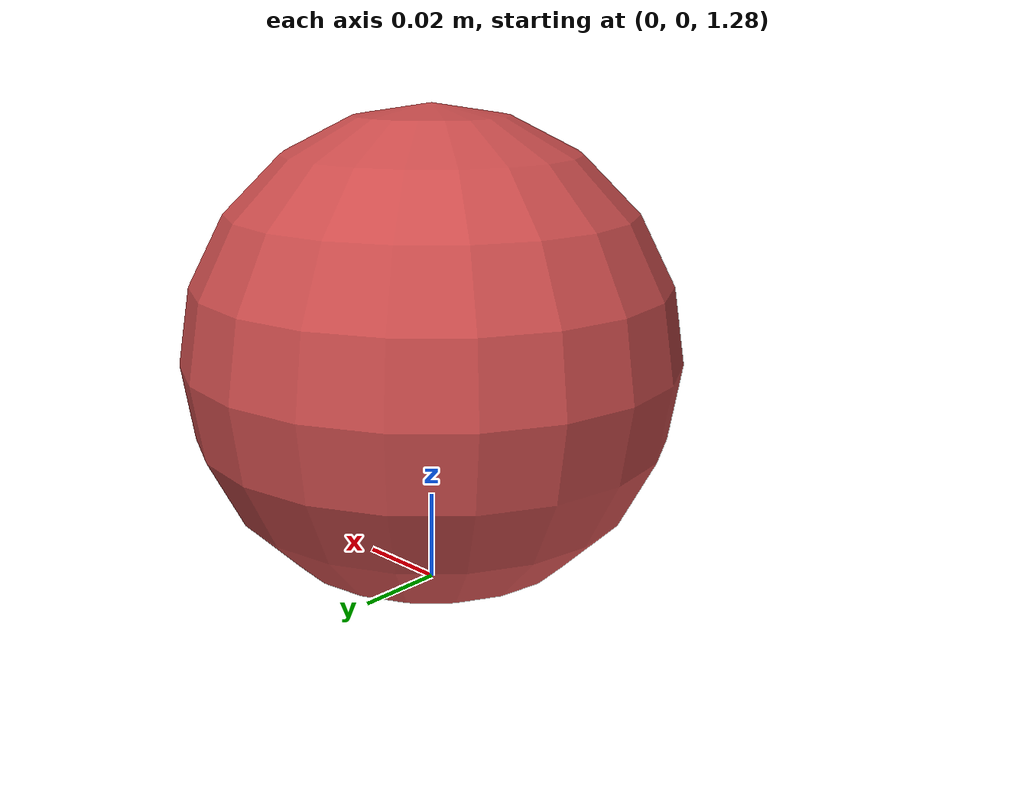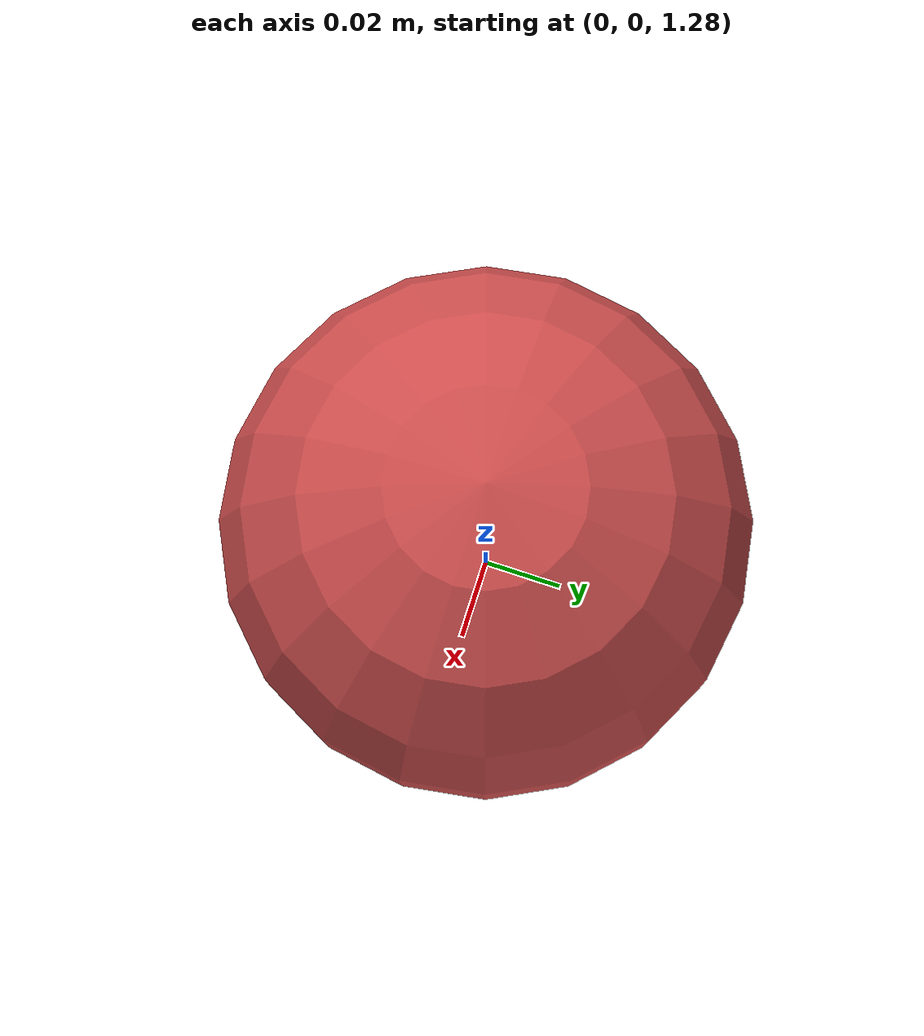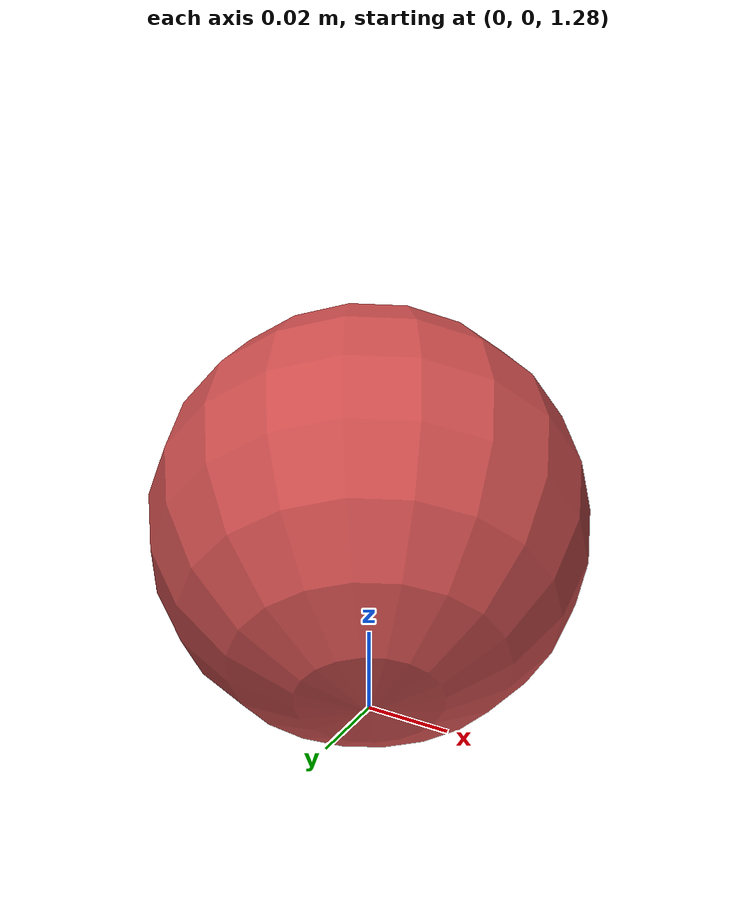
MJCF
<mujoco model="drop_001">
  <option timestep="0.001" gravity="0 0 -9.81"/>

  <visual>
    <headlight ambient="0.5 0.5 0.5"/>
  </visual>

  <asset>
    <texture name="grid" type="2d" builtin="checker" width="512" height="512" rgb1="0.2 0.3 0.4" rgb2="0.3 0.4 0.5"/>
    <material name="grid" texture="grid" texrepeat="1 1" reflectance="0.2"/>
    <material name="finger" rgba="0.8 0.3 0.3 1.0"/>
  </asset>

  <worldbody>
    <!-- Ground plane -->
    <geom name="floor" type="plane" size="2 2 0.1" material="grid"
          condim="6" friction="0.4905484535653448 0.005 0.0001" solref="0.02 1.2227803827165522"/>

    <!-- Sphere -->
    <body name="fingertip" pos="0 0 1.3329384600673826">
      <freejoint/>
      <geom name="finger" type="sphere" size="0.05437529066163689" mass="0.20132659273053072" material="finger"
            condim="6" friction="0.4905484535653448 0.005 0.0001" solref="0.02 1.2227803827165522"/>
      <site name="contact_site" pos="0 0 0" size="0.001"/>
    </body>
  </worldbody>

  <sensor>
    <touch name="finger_touch" site="contact_site"/>
    <framepos name="finger_pos" objtype="site" objname="contact_site"/>
    <framequat name="finger_quat" objtype="site" objname="contact_site"/>
    <framelinvel name="finger_vel" objtype="site" objname="contact_site"/>
  </sensor>
</mujoco>
